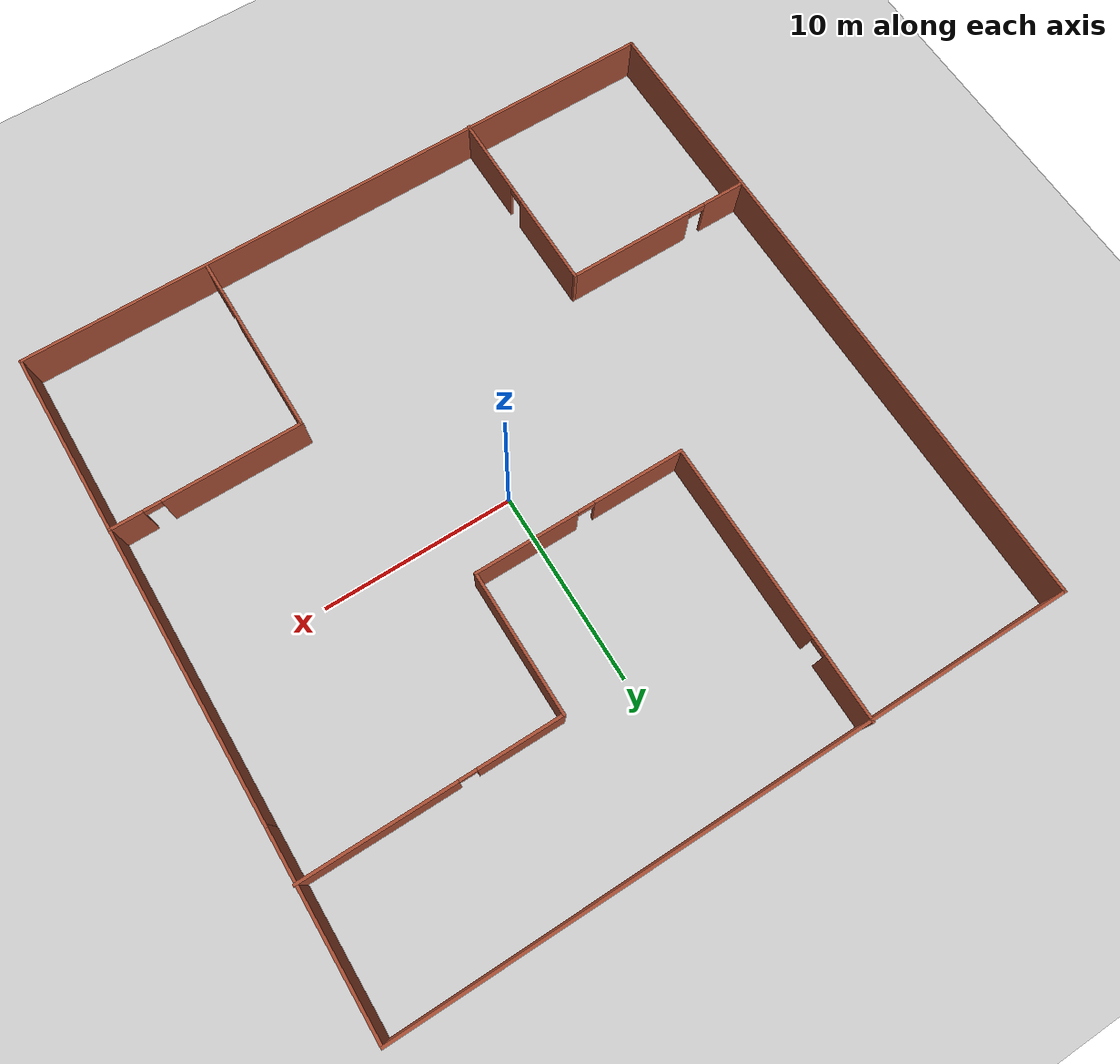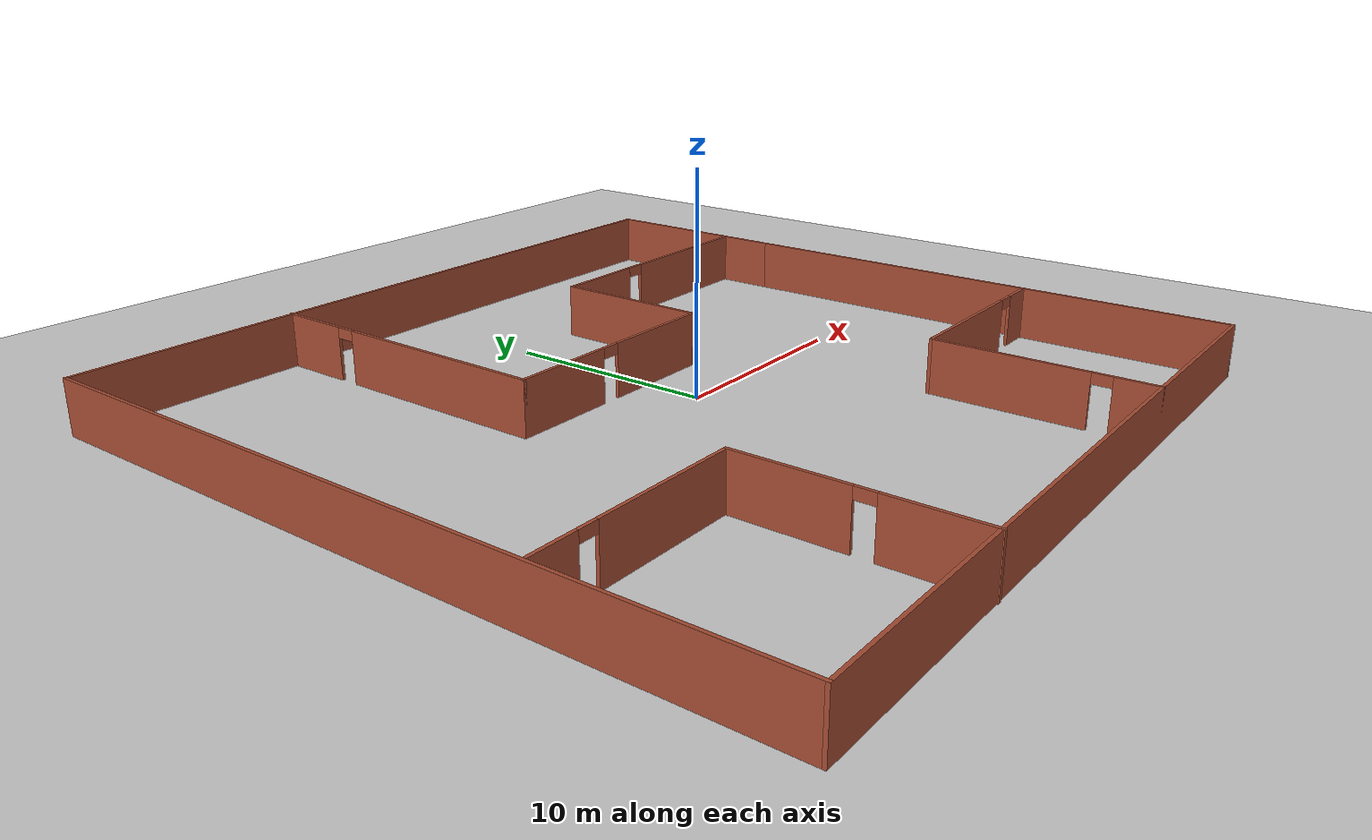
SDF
<sdf version="1.7">
 <world name="default">
  <light name="sun" type="directional">
   <pose>0 0 10 0 -0 0</pose>
   <diffuse>0.8 0.8 0.8 1</diffuse>
   <specular>0.2 0.2 0.2 1</specular>
   <attenuation>
    <range>1000</range>
    <constant>0.9</constant>
    <linear>0.01</linear>
    <quadratic>0.001</quadratic>
   </attenuation>
   <direction>-0.5 0.1 -0.9</direction>
   <spot><inner_angle>0</inner_angle><outer_angle>0</outer_angle><falloff>0</falloff></spot>
  </light>
  <model name="ground_plane">
   <static>1</static>
   <link name="link">
    <collision name="collision">
     <geometry><plane><normal>0 0 1</normal><size>100 100</size></plane></geometry>
     <surface><friction><ode><mu>100</mu><mu2>50</mu2></ode></friction></surface>
    </collision>
    <visual name="visual">
     <cast_shadows>0</cast_shadows>
     <geometry><plane><normal>0 0 1</normal><size>100 100</size></plane></geometry>
     <material>
      <script><uri>file://media/materials/scripts/gazebo.material</uri><name>Gazebo/Grey</name></script>
     </material>
    </visual>
   </link>
  </model>
  <gravity>0 0 -9.8</gravity>
  <magnetic_field>6e-06 2.3e-05 -4.2e-05</magnetic_field>
  <atmosphere type="adiabatic"/>
  <physics type="ode">
   <max_step_size>0.001</max_step_size>
   <real_time_factor>1</real_time_factor>
   <real_time_update_rate>1000</real_time_update_rate>
  </physics>
  <scene><ambient>0.4 0.4 0.4 1</ambient><background>0.7 0.7 0.7 1</background><shadows>1</shadows></scene>
  <spherical_coordinates>
   <surface_model>EARTH_WGS84</surface_model>
   <latitude_deg>0</latitude_deg>
   <longitude_deg>0</longitude_deg>
   <elevation>0</elevation>
   <heading_deg>0</heading_deg>
  </spherical_coordinates>
  <model name="house">
   <pose>-0.934216 -0.083328 0 0 -0 0</pose>
   <link name="Wall_10">
    <collision name="Wall_10_Collision">
     <geometry><box><size>35 0.15 2.5</size></box></geometry>
     <pose>0 0 1.25 0 -0 0</pose>
    </collision>
    <visual name="Wall_10_Visual">
     <pose>0 0 1.25 0 -0 0</pose>
     <geometry><box><size>35 0.15 2.5</size></box></geometry>
     <material>
      <script><uri>file://media/materials/scripts/gazebo.material</uri><name>Gazebo/Bricks</name></script>
      <ambient>1 1 1 1</ambient>
     </material>
     <meta><layer>0</layer></meta>
    </visual>
    <pose>-17.4587 -0.013956 0 0 -0 1.5708</pose>
   </link>
   <link name="Wall_12">
    <collision name="Wall_12_Collision">
     <geometry><box><size>35 0.15 2.5</size></box></geometry>
     <pose>0 0 1.25 0 -0 0</pose>
    </collision>
    <visual name="Wall_12_Visual">
     <pose>0 0 1.25 0 -0 0</pose>
     <geometry><box><size>35 0.15 2.5</size></box></geometry>
     <material>
      <script><uri>file://media/materials/scripts/gazebo.material</uri><name>Gazebo/Bricks</name></script>
      <ambient>1 1 1 1</ambient>
     </material>
     <meta><layer>0</layer></meta>
    </visual>
    <pose>-0.033678 17.411 0 0 -0 0</pose>
   </link>
   <link name="Wall_16">
    <collision name="Wall_16_Collision">
     <geometry><box><size>10 0.15 2.5</size></box></geometry>
     <pose>0 0 1.25 0 -0 0</pose>
    </collision>
    <visual name="Wall_16_Visual">
     <pose>0 0 1.25 0 -0 0</pose>
     <geometry><box><size>10 0.15 2.5</size></box></geometry>
     <material>
      <script><uri>file://media/materials/scripts/gazebo.material</uri><name>Gazebo/Bricks</name></script>
      <ambient>1 1 1 1</ambient>
     </material>
     <meta><layer>0</layer></meta>
    </visual>
    <pose>17.3913 12.486 0 0 -0 -1.5708</pose>
   </link>
   <link name="Wall_18">
    <collision name="Wall_18_Collision">
     <geometry><box><size>10 0.15 2.5</size></box></geometry>
     <pose>0 0 1.25 0 -0 0</pose>
    </collision>
    <visual name="Wall_18_Visual">
     <pose>0 0 1.25 0 -0 0</pose>
     <geometry><box><size>10 0.15 2.5</size></box></geometry>
     <material>
      <script><uri>file://media/materials/scripts/gazebo.material</uri><name>Gazebo/Bricks</name></script>
      <ambient>1 1 1 1</ambient>
     </material>
     <meta><layer>0</layer></meta>
    </visual>
    <pose>17.3913 -12.514 0 0 -0 1.5708</pose>
   </link>
   <link name="Wall_20">
    <pose>12.4663 -7.58896 0 0 -0 3.14159</pose>
    <visual name="Wall_20_Visual_0">
     <pose>-4.1186 0 1.25 0 -0 0</pose>
     <geometry><box><size>1.7628 0.15 2.5</size></box></geometry>
     <material>
      <script><uri>file://media/materials/scripts/gazebo.material</uri><name>Gazebo/Bricks</name></script>
      <ambient>1 1 1 1</ambient>
     </material>
     <meta><layer>0</layer></meta>
    </visual>
    <collision name="Wall_20_Collision_0">
     <geometry><box><size>1.7628 0.15 2.5</size></box></geometry>
     <pose>-4.1186 0 1.25 0 -0 0</pose>
    </collision>
    <visual name="Wall_20_Visual_1">
     <pose>1.3314 0 1.25 0 -0 0</pose>
     <geometry><box><size>7.3372 0.15 2.5</size></box></geometry>
     <material>
      <script><uri>file://media/materials/scripts/gazebo.material</uri><name>Gazebo/Bricks</name></script>
      <ambient>1 1 1 1</ambient>
     </material>
     <meta><layer>0</layer></meta>
    </visual>
    <collision name="Wall_20_Collision_1">
     <geometry><box><size>7.3372 0.15 2.5</size></box></geometry>
     <pose>1.3314 0 1.25 0 -0 0</pose>
    </collision>
    <visual name="Wall_20_Visual_2">
     <pose>-2.7872 0 2.25 0 -0 0</pose>
     <geometry><box><size>0.9 0.15 0.5</size></box></geometry>
     <material>
      <script><uri>file://media/materials/scripts/gazebo.material</uri><name>Gazebo/Bricks</name></script>
      <ambient>1 1 1 1</ambient>
     </material>
     <meta><layer>0</layer></meta>
    </visual>
    <collision name="Wall_20_Collision_2">
     <geometry><box><size>0.9 0.15 0.5</size></box></geometry>
     <pose>-2.7872 0 2.25 0 -0 0</pose>
    </collision>
   </link>
   <link name="Wall_22">
    <pose>7.54132 -12.514 0 0 -0 -1.5708</pose>
    <visual name="Wall_22_Visual_0">
     <pose>-1.44141 0 1.25 0 -0 0</pose>
     <geometry><box><size>7.11718 0.15 2.5</size></box></geometry>
     <material>
      <script><uri>file://media/materials/scripts/gazebo.material</uri><name>Gazebo/Bricks</name></script>
      <ambient>1 1 1 1</ambient>
     </material>
     <meta><layer>0</layer></meta>
    </visual>
    <collision name="Wall_22_Collision_0">
     <geometry><box><size>7.11718 0.15 2.5</size></box></geometry>
     <pose>-1.44141 0 1.25 0 -0 0</pose>
    </collision>
    <visual name="Wall_22_Visual_1">
     <pose>4.00859 0 1.25 0 -0 0</pose>
     <geometry><box><size>1.98282 0.15 2.5</size></box></geometry>
     <material>
      <script><uri>file://media/materials/scripts/gazebo.material</uri><name>Gazebo/Bricks</name></script>
      <ambient>1 1 1 1</ambient>
     </material>
     <meta><layer>0</layer></meta>
    </visual>
    <collision name="Wall_22_Collision_1">
     <geometry><box><size>1.98282 0.15 2.5</size></box></geometry>
     <pose>4.00859 0 1.25 0 -0 0</pose>
    </collision>
    <visual name="Wall_22_Visual_2">
     <pose>2.56718 0 2.25 0 -0 0</pose>
     <geometry><box><size>0.9 0.15 0.5</size></box></geometry>
     <material>
      <script><uri>file://media/materials/scripts/gazebo.material</uri><name>Gazebo/Bricks</name></script>
      <ambient>1 1 1 1</ambient>
     </material>
     <meta><layer>0</layer></meta>
    </visual>
    <collision name="Wall_22_Collision_2">
     <geometry><box><size>0.9 0.15 0.5</size></box></geometry>
     <pose>2.56718 0 2.25 0 -0 0</pose>
    </collision>
   </link>
   <link name="Wall_30">
    <pose>-12.4149 -7.38339 0 0 -0 3.14159</pose>
    <visual name="Wall_30_Visual_0">
     <pose>-1.58482 0 1.25 0 -0 0</pose>
     <geometry><box><size>6.83037 0.15 2.5</size></box></geometry>
     <material>
      <script><uri>file://media/materials/scripts/gazebo.material</uri><name>Gazebo/Bricks</name></script>
      <ambient>1 1 1 1</ambient>
     </material>
     <meta><layer>0</layer></meta>
    </visual>
    <collision name="Wall_30_Collision_0">
     <geometry><box><size>6.83037 0.15 2.5</size></box></geometry>
     <pose>-1.58482 0 1.25 0 -0 0</pose>
    </collision>
    <visual name="Wall_30_Visual_1">
     <pose>3.86518 0 1.25 0 -0 0</pose>
     <geometry><box><size>2.26963 0.15 2.5</size></box></geometry>
     <material>
      <script><uri>file://media/materials/scripts/gazebo.material</uri><name>Gazebo/Bricks</name></script>
      <ambient>1 1 1 1</ambient>
     </material>
     <meta><layer>0</layer></meta>
    </visual>
    <collision name="Wall_30_Collision_1">
     <geometry><box><size>2.26963 0.15 2.5</size></box></geometry>
     <pose>3.86518 0 1.25 0 -0 0</pose>
    </collision>
    <visual name="Wall_30_Visual_2">
     <pose>2.28037 0 2.25 0 -0 0</pose>
     <geometry><box><size>0.9 0.15 0.5</size></box></geometry>
     <material>
      <script><uri>file://media/materials/scripts/gazebo.material</uri><name>Gazebo/Bricks</name></script>
      <ambient>1 1 1 1</ambient>
     </material>
     <meta><layer>0</layer></meta>
    </visual>
    <collision name="Wall_30_Collision_2">
     <geometry><box><size>0.9 0.15 0.5</size></box></geometry>
     <pose>2.28037 0 2.25 0 -0 0</pose>
    </collision>
   </link>
   <link name="Wall_32">
    <pose>-7.48993 -12.4334 0 0 -0 -1.5708</pose>
    <visual name="Wall_32_Visual_0">
     <pose>-2.58654 0 1.25 0 -0 0</pose>
     <geometry><box><size>5.07692 0.15 2.5</size></box></geometry>
     <material>
      <script><uri>file://media/materials/scripts/gazebo.material</uri><name>Gazebo/Bricks</name></script>
      <ambient>1 1 1 1</ambient>
     </material>
     <meta><layer>0</layer></meta>
    </visual>
    <collision name="Wall_32_Collision_0">
     <geometry><box><size>5.07692 0.15 2.5</size></box></geometry>
     <pose>-2.58654 0 1.25 0 -0 0</pose>
    </collision>
    <visual name="Wall_32_Visual_1">
     <pose>2.98846 0 1.25 0 -0 0</pose>
     <geometry><box><size>4.27308 0.15 2.5</size></box></geometry>
     <material>
      <script><uri>file://media/materials/scripts/gazebo.material</uri><name>Gazebo/Bricks</name></script>
      <ambient>1 1 1 1</ambient>
     </material>
     <meta><layer>0</layer></meta>
    </visual>
    <collision name="Wall_32_Collision_1">
     <geometry><box><size>4.27308 0.15 2.5</size></box></geometry>
     <pose>2.98846 0 1.25 0 -0 0</pose>
    </collision>
    <visual name="Wall_32_Visual_2">
     <pose>0.401918 0 2.25 0 -0 0</pose>
     <geometry><box><size>0.9 0.15 0.5</size></box></geometry>
     <material>
      <script><uri>file://media/materials/scripts/gazebo.material</uri><name>Gazebo/Bricks</name></script>
      <ambient>1 1 1 1</ambient>
     </material>
     <meta><layer>0</layer></meta>
    </visual>
    <collision name="Wall_32_Collision_2">
     <geometry><box><size>0.9 0.15 0.5</size></box></geometry>
     <pose>0.401918 0 2.25 0 -0 0</pose>
    </collision>
   </link>
   <link name="Wall_34">
    <pose>-6.74132 10.1834 0 0 -0 -1.5708</pose>
    <visual name="Wall_34_Visual_0">
     <pose>-5.64419 0 1.25 0 -0 0</pose>
     <geometry><box><size>3.46163 0.15 2.5</size></box></geometry>
     <material>
      <script><uri>file://media/materials/scripts/gazebo.material</uri><name>Gazebo/Bricks</name></script>
      <ambient>1 1 1 1</ambient>
     </material>
     <meta><layer>0</layer></meta>
    </visual>
    <collision name="Wall_34_Collision_0">
     <geometry><box><size>3.46163 0.15 2.5</size></box></geometry>
     <pose>-5.64419 0 1.25 0 -0 0</pose>
    </collision>
    <visual name="Wall_34_Visual_1">
     <pose>2.18081 0 1.25 0 -0 0</pose>
     <geometry><box><size>10.3884 0.15 2.5</size></box></geometry>
     <material>
      <script><uri>file://media/materials/scripts/gazebo.material</uri><name>Gazebo/Bricks</name></script>
      <ambient>1 1 1 1</ambient>
     </material>
     <meta><layer>0</layer></meta>
    </visual>
    <collision name="Wall_34_Collision_1">
     <geometry><box><size>10.3884 0.15 2.5</size></box></geometry>
     <pose>2.18081 0 1.25 0 -0 0</pose>
    </collision>
    <visual name="Wall_34_Visual_2">
     <pose>-3.46338 0 2.25 0 -0 0</pose>
     <geometry><box><size>0.9 0.15 0.5</size></box></geometry>
     <material>
      <script><uri>file://media/materials/scripts/gazebo.material</uri><name>Gazebo/Bricks</name></script>
      <ambient>1 1 1 1</ambient>
     </material>
     <meta><layer>0</layer></meta>
    </visual>
    <collision name="Wall_34_Collision_2">
     <geometry><box><size>0.9 0.15 0.5</size></box></geometry>
     <pose>-3.46338 0 2.25 0 -0 0</pose>
    </collision>
   </link>
   <link name="Wall_35">
    <pose>-1.19132 2.88339 0 0 -0 0</pose>
    <visual name="Wall_35_Visual_0">
     <pose>-3.19237 0 1.25 0 -0 0</pose>
     <geometry><box><size>4.86527 0.15 2.5</size></box></geometry>
     <material>
      <script><uri>file://media/materials/scripts/gazebo.material</uri><name>Gazebo/Bricks</name></script>
      <ambient>1 1 1 1</ambient>
     </material>
     <meta><layer>0</layer></meta>
    </visual>
    <collision name="Wall_35_Collision_0">
     <geometry><box><size>4.86527 0.15 2.5</size></box></geometry>
     <pose>-3.19237 0 1.25 0 -0 0</pose>
    </collision>
    <visual name="Wall_35_Visual_1">
     <pose>2.88263 0 1.25 0 -0 0</pose>
     <geometry><box><size>5.48473 0.15 2.5</size></box></geometry>
     <material>
      <script><uri>file://media/materials/scripts/gazebo.material</uri><name>Gazebo/Bricks</name></script>
      <ambient>1 1 1 1</ambient>
     </material>
     <meta><layer>0</layer></meta>
    </visual>
    <collision name="Wall_35_Collision_1">
     <geometry><box><size>5.48473 0.15 2.5</size></box></geometry>
     <pose>2.88263 0 1.25 0 -0 0</pose>
    </collision>
    <visual name="Wall_35_Visual_2">
     <pose>-0.309732 0 2.25 0 -0 0</pose>
     <geometry><box><size>0.9 0.15 0.5</size></box></geometry>
     <material>
      <script><uri>file://media/materials/scripts/gazebo.material</uri><name>Gazebo/Bricks</name></script>
      <ambient>1 1 1 1</ambient>
     </material>
     <meta><layer>0</layer></meta>
    </visual>
    <collision name="Wall_35_Collision_2">
     <geometry><box><size>0.9 0.15 0.5</size></box></geometry>
     <pose>-0.309732 0 2.25 0 -0 0</pose>
    </collision>
   </link>
   <link name="Wall_36">
    <collision name="Wall_36_Collision">
     <geometry><box><size>7.5 0.15 2.5</size></box></geometry>
     <pose>0 0 1.25 0 -0 0</pose>
    </collision>
    <visual name="Wall_36_Visual">
     <pose>0 0 1.25 0 -0 0</pose>
     <geometry><box><size>7.5 0.15 2.5</size></box></geometry>
     <material>
      <script><uri>file://media/materials/scripts/gazebo.material</uri><name>Gazebo/Bricks</name></script>
      <ambient>1 1 1 1</ambient>
     </material>
     <meta><layer>0</layer></meta>
    </visual>
    <pose>4.35868 6.55839 0 0 -0 1.5708</pose>
   </link>
   <link name="Wall_37">
    <pose>10.9087 10.2334 0 0 -0 0</pose>
    <visual name="Wall_37_Visual_0">
     <pose>-4.40852 0 1.25 0 -0 0</pose>
     <geometry><box><size>4.43296 0.15 2.5</size></box></geometry>
     <material>
      <script><uri>file://media/materials/scripts/gazebo.material</uri><name>Gazebo/Bricks</name></script>
      <ambient>1 1 1 1</ambient>
     </material>
     <meta><layer>0</layer></meta>
    </visual>
    <collision name="Wall_37_Collision_0">
     <geometry><box><size>4.43296 0.15 2.5</size></box></geometry>
     <pose>-4.40852 0 1.25 0 -0 0</pose>
    </collision>
    <visual name="Wall_37_Visual_1">
     <pose>2.66648 0 1.25 0 -0 0</pose>
     <geometry><box><size>7.91704 0.15 2.5</size></box></geometry>
     <material>
      <script><uri>file://media/materials/scripts/gazebo.material</uri><name>Gazebo/Bricks</name></script>
      <ambient>1 1 1 1</ambient>
     </material>
     <meta><layer>0</layer></meta>
    </visual>
    <collision name="Wall_37_Collision_1">
     <geometry><box><size>7.91704 0.15 2.5</size></box></geometry>
     <pose>2.66648 0 1.25 0 -0 0</pose>
    </collision>
    <visual name="Wall_37_Visual_2">
     <pose>-1.74204 0 2.25 0 -0 0</pose>
     <geometry><box><size>0.9 0.15 0.5</size></box></geometry>
     <material>
      <script><uri>file://media/materials/scripts/gazebo.material</uri><name>Gazebo/Bricks</name></script>
      <ambient>1 1 1 1</ambient>
     </material>
     <meta><layer>0</layer></meta>
    </visual>
    <collision name="Wall_37_Collision_2">
     <geometry><box><size>0.9 0.15 0.5</size></box></geometry>
     <pose>-1.74204 0 2.25 0 -0 0</pose>
    </collision>
   </link>
   <link name="Wall_39">
    <collision name="Wall_39_Collision">
     <geometry><box><size>15.3 0.15 2.5</size></box></geometry>
     <pose>0 0 1.25 0 -0 0</pose>
    </collision>
    <visual name="Wall_39_Visual">
     <pose>0 0 1.25 0 -0 0</pose>
     <geometry><box><size>15.3 0.15 2.5</size></box></geometry>
     <material>
      <script><uri>file://media/materials/scripts/gazebo.material</uri><name>Gazebo/Bricks</name></script>
      <ambient>1 1 1 1</ambient>
     </material>
     <meta><layer>0</layer></meta>
    </visual>
    <pose>17.3913 -0.013956 0 0 -0 -1.5708</pose>
   </link>
   <link name="Wall_7">
    <collision name="Wall_7_Collision">
     <geometry><box><size>35 0.15 2.5</size></box></geometry>
     <pose>0 0 1.25 0 -0 0</pose>
    </collision>
    <visual name="Wall_7_Visual">
     <pose>0 0 1.25 0 -0 0</pose>
     <geometry><box><size>35 0.15 2.5</size></box></geometry>
     <material>
      <script><uri>file://media/materials/scripts/gazebo.material</uri><name>Gazebo/Bricks</name></script>
      <ambient>1 1 1 1</ambient>
     </material>
     <meta><layer>0</layer></meta>
    </visual>
    <pose>-0.033678 -17.439 0 0 -0 0</pose>
   </link>
   <static>1</static>
  </model>
 </world>
</sdf>
